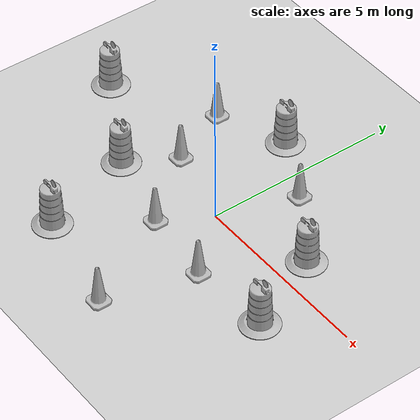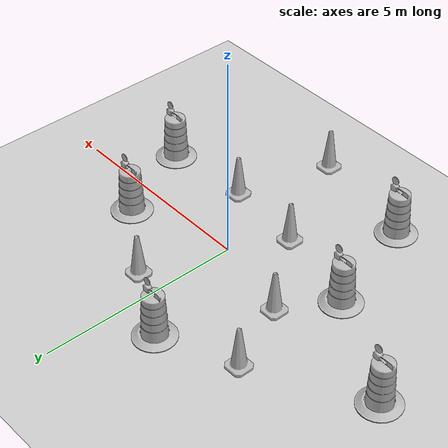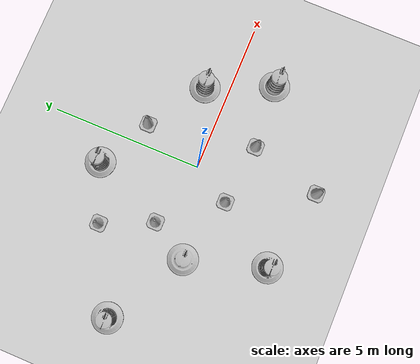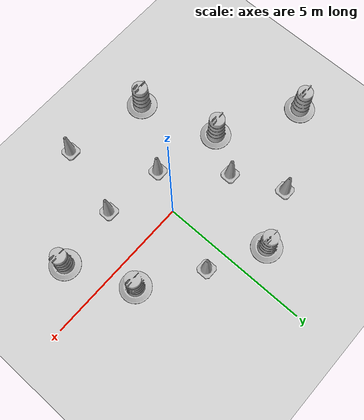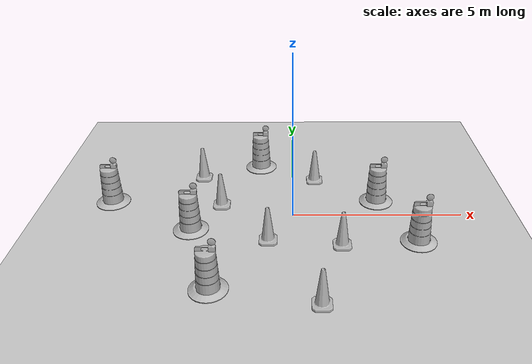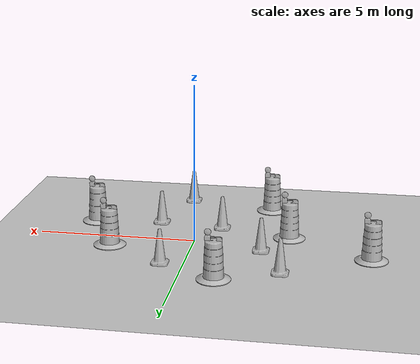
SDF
<sdf version="1.7">
 <world name="default">
  <light name="sun" type="directional">
   <pose>0 0 10 0 -0 0</pose>
   <diffuse>0.8 0.8 0.8 1</diffuse>
   <specular>0.2 0.2 0.2 1</specular>
   <attenuation>
    <range>1000</range>
    <constant>0.9</constant>
    <linear>0.01</linear>
    <quadratic>0.001</quadratic>
   </attenuation>
   <direction>-0.5 0.1 -0.9</direction>
   <spot><inner_angle>0</inner_angle><outer_angle>0</outer_angle><falloff>0</falloff></spot>
  </light>
  <model name="ground_plane">
   <static>1</static>
   <link name="link">
    <collision name="collision">
     <geometry><plane><normal>0 0 1</normal><size>100 100</size></plane></geometry>
     <surface>
      <contact><collide_bitmask>65535</collide_bitmask></contact>
      <friction><ode><mu>100</mu><mu2>50</mu2></ode></friction>
     </surface>
    </collision>
    <visual name="visual">
     <cast_shadows>0</cast_shadows>
     <geometry><plane><normal>0 0 1</normal><size>100 100</size></plane></geometry>
     <material>
      <script><uri>file://media/materials/scripts/gazebo.material</uri><name>Gazebo/Grey</name></script>
     </material>
    </visual>
   </link>
  </model>
  <gravity>0 0 -9.8</gravity>
  <magnetic_field>6e-06 2.3e-05 -4.2e-05</magnetic_field>
  <atmosphere type="adiabatic"/>
  <physics type="ode">
   <max_step_size>0.001</max_step_size>
   <real_time_factor>1</real_time_factor>
   <real_time_update_rate>1000</real_time_update_rate>
  </physics>
  <scene><ambient>0.4 0.4 0.4 1</ambient><background>0.7 0.7 0.7 1</background><shadows>1</shadows></scene>
  <audio><device>default</device></audio>
  <spherical_coordinates>
   <surface_model>EARTH_WGS84</surface_model>
   <latitude_deg>0</latitude_deg>
   <longitude_deg>0</longitude_deg>
   <elevation>0</elevation>
   <heading_deg>0</heading_deg>
  </spherical_coordinates>
  <model name="Construction Barrel">
   <link name="link">
    <inertial>
     <pose>0 0 0.4 0 -0 0</pose>
     <mass>500</mass>
     <inertia><ixx>51.2096</ixx><iyy>51.2096</iyy><izz>25</izz><ixy>0</ixy><ixz>0</ixz><iyz>0</iyz></inertia>
    </inertial>
    <collision name="collision">
     <geometry><mesh><uri>model://construction_barrel/meshes/construction_barrel.dae</uri></mesh></geometry>
    </collision>
    <visual name="visual">
     <geometry><mesh><uri>model://construction_barrel/meshes/construction_barrel.dae</uri></mesh></geometry>
    </visual>
   </link>
   <pose>-2.92255 -0.71373 -2e-06 7e-06 -2e-06 -2.1e-05</pose>
  </model>
  <model name="Construction Barrel_0">
   <link name="link">
    <inertial>
     <pose>0 0 0.4 0 -0 0</pose>
     <mass>500</mass>
     <inertia><ixx>51.2096</ixx><iyy>51.2096</iyy><izz>25</izz><ixy>0</ixy><ixz>0</ixz><iyz>0</iyz></inertia>
    </inertial>
    <collision name="collision">
     <geometry><mesh><uri>model://construction_barrel/meshes/construction_barrel.dae</uri></mesh></geometry>
    </collision>
    <visual name="visual">
     <geometry><mesh><uri>model://construction_barrel/meshes/construction_barrel.dae</uri></mesh></geometry>
    </visual>
   </link>
   <pose>-1.06029 2.97286 -2e-06 7e-06 -2e-06 -2e-05</pose>
  </model>
  <model name="Construction Cone">
   <link name="link">
    <collision name="collision">
     <geometry>
      <mesh><scale>10 10 10</scale><uri>model://construction_cone/meshes/construction_cone.dae</uri></mesh>
     </geometry>
    </collision>
    <visual name="visual">
     <geometry>
      <mesh><scale>10 10 10</scale><uri>model://construction_cone/meshes/construction_cone.dae</uri></mesh>
     </geometry>
    </visual>
    <inertial>
     <inertia><ixx>1</ixx><ixy>0</ixy><ixz>0</ixz><iyy>1</iyy><iyz>0</iyz><izz>1</izz></inertia>
     <mass>1</mass>
    </inertial>
   </link>
   <pose>0.702999 2.02812 -0 0 -0 0</pose>
  </model>
  <model name="Construction Cone_0">
   <link name="link">
    <collision name="collision">
     <geometry>
      <mesh><scale>10 10 10</scale><uri>model://construction_cone/meshes/construction_cone.dae</uri></mesh>
     </geometry>
    </collision>
    <visual name="visual">
     <geometry>
      <mesh><scale>10 10 10</scale><uri>model://construction_cone/meshes/construction_cone.dae</uri></mesh>
     </geometry>
    </visual>
    <inertial>
     <inertia><ixx>1</ixx><ixy>0</ixy><ixz>0</ixz><iyy>1</iyy><iyz>0</iyz><izz>1</izz></inertia>
     <mass>1</mass>
    </inertial>
   </link>
   <pose>-0.697543 -1.26728 -0 0 -0 0</pose>
  </model>
  <model name="Construction Cone_1">
   <link name="link">
    <collision name="collision">
     <geometry>
      <mesh><scale>10 10 10</scale><uri>model://construction_cone/meshes/construction_cone.dae</uri></mesh>
     </geometry>
    </collision>
    <visual name="visual">
     <geometry>
      <mesh><scale>10 10 10</scale><uri>model://construction_cone/meshes/construction_cone.dae</uri></mesh>
     </geometry>
    </visual>
    <inertial>
     <inertia><ixx>1</ixx><ixy>0</ixy><ixz>0</ixz><iyy>1</iyy><iyz>0</iyz><izz>1</izz></inertia>
     <mass>1</mass>
    </inertial>
   </link>
   <pose>-2.15865 0.555043 -0 0 -0 0</pose>
  </model>
  <model name="Construction Cone_2">
   <link name="link">
    <collision name="collision">
     <geometry>
      <mesh><scale>10 10 10</scale><uri>model://construction_cone/meshes/construction_cone.dae</uri></mesh>
     </geometry>
    </collision>
    <visual name="visual">
     <geometry>
      <mesh><scale>10 10 10</scale><uri>model://construction_cone/meshes/construction_cone.dae</uri></mesh>
     </geometry>
    </visual>
    <inertial>
     <inertia><ixx>1</ixx><ixy>0</ixy><ixz>0</ixz><iyy>1</iyy><iyz>0</iyz><izz>1</izz></inertia>
     <mass>1</mass>
    </inertial>
   </link>
   <pose>-2.90145 2.22561 -0 0 -0 0</pose>
  </model>
  <model name="Construction Barrel_1">
   <link name="link">
    <inertial>
     <pose>0 0 0.4 0 -0 0</pose>
     <mass>500</mass>
     <inertia><ixx>51.2096</ixx><iyy>51.2096</iyy><izz>25</izz><ixy>0</ixy><ixz>0</ixz><iyz>0</iyz></inertia>
    </inertial>
    <collision name="collision">
     <geometry><mesh><uri>model://construction_barrel/meshes/construction_barrel.dae</uri></mesh></geometry>
    </collision>
    <visual name="visual">
     <geometry><mesh><uri>model://construction_barrel/meshes/construction_barrel.dae</uri></mesh></geometry>
    </visual>
   </link>
   <pose>2.5549 0.777963 -2e-06 7e-06 -4e-06 -1.2e-05</pose>
  </model>
  <model name="Construction Cone_3">
   <link name="link">
    <collision name="collision">
     <geometry>
      <mesh><scale>10 10 10</scale><uri>model://construction_cone/meshes/construction_cone.dae</uri></mesh>
     </geometry>
    </collision>
    <visual name="visual">
     <geometry>
      <mesh><scale>10 10 10</scale><uri>model://construction_cone/meshes/construction_cone.dae</uri></mesh>
     </geometry>
    </visual>
    <inertial>
     <inertia><ixx>1</ixx><ixy>0</ixy><ixz>0</ixz><iyy>1</iyy><iyz>0</iyz><izz>1</izz></inertia>
     <mass>1</mass>
    </inertial>
   </link>
   <pose>1.34783 -1.50008 -1e-05 -1e-06 0 0</pose>
  </model>
  <model name="Construction Barrel_2">
   <link name="link">
    <inertial>
     <pose>0 0 0.4 0 -0 0</pose>
     <mass>500</mass>
     <inertia><ixx>51.2096</ixx><iyy>51.2096</iyy><izz>25</izz><ixy>0</ixy><ixz>0</ixz><iyz>0</iyz></inertia>
    </inertial>
    <collision name="collision">
     <geometry><mesh><uri>model://construction_barrel/meshes/construction_barrel.dae</uri></mesh></geometry>
    </collision>
    <visual name="visual">
     <geometry><mesh><uri>model://construction_barrel/meshes/construction_barrel.dae</uri></mesh></geometry>
    </visual>
   </link>
   <pose>-2.11774 -3.29411 -0 0 -0 -9e-06</pose>
  </model>
  <model name="Construction Barrel_3">
   <link name="link">
    <inertial>
     <pose>0 0 0.4 0 -0 0</pose>
     <mass>500</mass>
     <inertia><ixx>51.2096</ixx><iyy>51.2096</iyy><izz>25</izz><ixy>0</ixy><ixz>0</ixz><iyz>0</iyz></inertia>
    </inertial>
    <collision name="collision">
     <geometry><mesh><uri>model://construction_barrel/meshes/construction_barrel.dae</uri></mesh></geometry>
    </collision>
    <visual name="visual">
     <geometry><mesh><uri>model://construction_barrel/meshes/construction_barrel.dae</uri></mesh></geometry>
    </visual>
   </link>
   <pose>-5.51555 0.775558 -1e-06 3e-06 1e-05 -9e-06</pose>
  </model>
  <model name="Construction Cone_4">
   <link name="link">
    <collision name="collision">
     <geometry>
      <mesh><scale>10 10 10</scale><uri>model://construction_cone/meshes/construction_cone.dae</uri></mesh>
     </geometry>
    </collision>
    <visual name="visual">
     <geometry>
      <mesh><scale>10 10 10</scale><uri>model://construction_cone/meshes/construction_cone.dae</uri></mesh>
     </geometry>
    </visual>
    <inertial>
     <inertia><ixx>1</ixx><ixy>0</ixy><ixz>0</ixz><iyy>1</iyy><iyz>0</iyz><izz>1</izz></inertia>
     <mass>1</mass>
    </inertial>
   </link>
   <pose>0.682502 -3.87258 -8e-06 0 1e-06 0</pose>
  </model>
  <model name="Construction Barrel_4">
   <link name="link">
    <inertial>
     <pose>0 0 0.4 0 -0 0</pose>
     <mass>500</mass>
     <inertia><ixx>51.2096</ixx><iyy>51.2096</iyy><izz>25</izz><ixy>0</ixy><ixz>0</ixz><iyz>0</iyz></inertia>
    </inertial>
    <collision name="collision">
     <geometry><mesh><uri>model://construction_barrel/meshes/construction_barrel.dae</uri></mesh></geometry>
    </collision>
    <visual name="visual">
     <geometry><mesh><uri>model://construction_barrel/meshes/construction_barrel.dae</uri></mesh></geometry>
    </visual>
   </link>
   <pose>3.48402 -1.3272 -2e-06 7e-06 -4e-06 -4e-06</pose>
  </model>
 </world>
</sdf>
